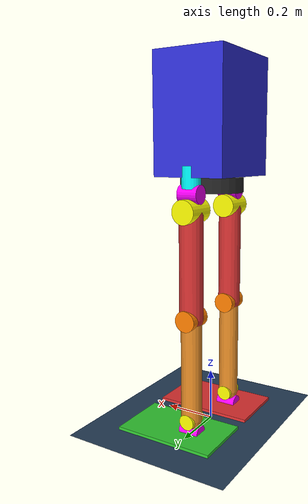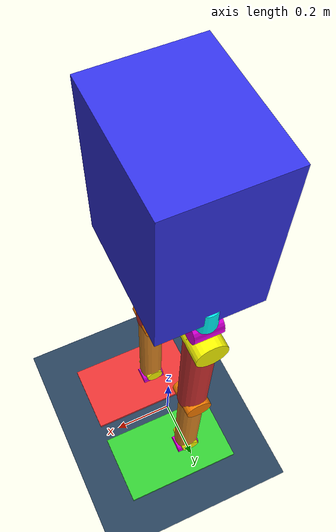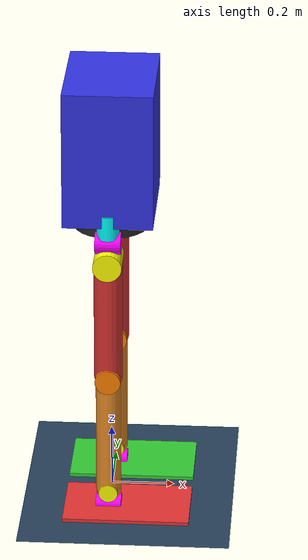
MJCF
<?xml version="1.0"?>
<mujoco model="colored_humanoid">

    <compiler angle="radian" inertiafromgeom="true"/>

    <option timestep="0.001"
            gravity="0 0 -9.81"
            solver="Newton"
            iterations="100"/>

    <default>
        <joint damping="20"
               armature="0.1"
               limited="true"/>

        <geom friction="2.0 0.1 0.1"/>

        <motor ctrllimited="true"
               ctrlrange="-1 1"/>
    </default>

    <asset>
        <texture name="grid" type="2d" builtin="checker" rgb1=".1 .2 .3" rgb2=".2 .3 .4" width="300" height="300"/>
        <material name="grid" texture="grid" texrepeat="8 8" reflectance="0.2"/>
    </asset>

    <worldbody>

        <geom name="ground"
              type="plane"
              pos="0 0 0"
              size="20 20 0.1"
              material="grid"/>

        <!-- TORSO -->

        <body name="torso" pos="0 0 1.20">

            <freejoint name="root"/>

            <site name="imu_site" pos="0 0 0" size="0.01" rgba="1 0 0 1"/>

            <geom name="torso_geom"
                  type="box"
                  size="0.14 0.18 0.22"
                  mass="8"
                  rgba="0.2 0.2 0.9 1"/>

            <geom name="pelvis"
                  type="cylinder"
                  size="0.12 0.06"
                  pos="0 0 -0.22"
                  mass="6"
                  rgba="0.15 0.15 0.15 1"/>

            <!-- LEFT LEG -->

            <body name="left_hip_yaw_link"
                  pos="0 0.15 -0.22">

                <joint name="left_hip_yaw"
                       type="hinge"
                       axis="0 0 1"
                       range="-0.6 0.6"/>

                <geom type="cylinder"
                      size="0.035 0.04"
                      mass="0.2"
                      rgba="0 1 1 1"/>

                <body name="left_hip_roll_link"
                      pos="0 0 -0.06">

                    <joint name="left_hip_roll"
                           type="hinge"
                           axis="1 0 0"
                           range="-0.5 0.5"/>

                    <geom type="cylinder"
                          size="0.035 0.04"
                          quat="0.7071 0 0.7071 0"
                          mass="0.2"
                          rgba="1 0 1 1"/>

                    <body name="left_thigh_link"
                          pos="0 0 -0.06">

                        <joint name="left_hip_pitch"
                               type="hinge"
                               axis="0 1 0"
                               range="-1.5 0.8"/>

                        <geom type="cylinder"
                              size="0.045 0.06"
                              quat="0.7071 0.7071 0 0"
                              mass="0.2"
                              rgba="1 1 0 1"/>

                        <geom name="left_thigh"
                              type="capsule"
                              fromto="0 0 0 0 0 -0.40"
                              size="0.045"
                              mass="4"
                              rgba="0.85 0.2 0.2 1"/>

                        <body name="left_shin_link"
                              pos="0 0 -0.40">

                            <joint name="left_knee_pitch"
                                   type="hinge"
                                   axis="0 1 0"
                                   range="0 2.0"/>

                            <geom type="cylinder"
                                  size="0.04 0.05"
                                  quat="0.7071 0.7071 0 0"
                                  mass="0.2"
                                  rgba="1 0.5 0 1"/>

                            <geom name="left_shin"
                                  type="capsule"
                                  fromto="0 0 0 0 0 -0.40"
                                  size="0.04"
                                  mass="3"
                                  rgba="0.9 0.55 0.15 1"/>

                            <body name="left_ankle_pitch_link"
                                  pos="0 0 -0.40">

                                <joint name="left_ankle_pitch"
                                       type="hinge"
                                       axis="0 1 0"
                                       range="-0.8 0.6"/>

                                <geom type="cylinder"
                                      size="0.03 0.04"
                                      quat="0.7071 0.7071 0 0"
                                      mass="0.2"
                                      rgba="1 1 0 1"/>

                                <body name="left_foot_link"
                                      pos="0 0 -0.05">

                                    <joint name="left_ankle_roll"
                                           type="hinge"
                                           axis="1 0 0"
                                           range="-0.45 0.45"/>

                                    <geom type="cylinder"
                                          size="0.03 0.04"
                                          quat="0.7071 0 0.7071 0"
                                          mass="0.2"
                                          rgba="1 0 1 1"/>

                                    <geom name="left_foot"
                                          type="box"
                                          size="0.20 0.12 0.025"
                                          pos="0.06 0 -0.025"
                                          mass="2.5"
                                          rgba="0.2 0.8 0.2 1"/>

                                </body>
                            </body>
                        </body>
                    </body>
                </body>
            </body>

            <!-- RIGHT LEG -->

            <body name="right_hip_yaw_link"
                  pos="0 -0.15 -0.22">

                <joint name="right_hip_yaw"
                       type="hinge"
                       axis="0 0 1"
                       range="-0.6 0.6"/>

                <geom type="cylinder"
                      size="0.035 0.04"
                      mass="0.2"
                      rgba="0 1 1 1"/>

                <body name="right_hip_roll_link"
                      pos="0 0 -0.06">

                    <joint name="right_hip_roll"
                           type="hinge"
                           axis="1 0 0"
                           range="-0.5 0.5"/>

                    <geom type="cylinder"
                          size="0.035 0.04"
                          quat="0.7071 0 0.7071 0"
                          mass="0.2"
                          rgba="1 0 1 1"/>

                    <body name="right_thigh_link"
                          pos="0 0 -0.06">

                        <joint name="right_hip_pitch"
                               type="hinge"
                               axis="0 1 0"
                               range="-1.5 0.8"/>

                        <geom type="cylinder"
                              size="0.045 0.06"
                              quat="0.7071 0.7071 0 0"
                              mass="0.2"
                              rgba="1 1 0 1"/>

                        <geom name="right_thigh"
                              type="capsule"
                              fromto="0 0 0 0 0 -0.40"
                              size="0.045"
                              mass="4"
                              rgba="0.85 0.2 0.2 1"/>

                        <body name="right_shin_link"
                              pos="0 0 -0.40">

                            <joint name="right_knee_pitch"
                                   type="hinge"
                                   axis="0 1 0"
                                   range="0 2.0"/>

                            <geom type="cylinder"
                                  size="0.04 0.05"
                                  quat="0.7071 0.7071 0 0"
                                  mass="0.2"
                                  rgba="1 0.5 0 1"/>

                            <geom name="right_shin"
                                  type="capsule"
                                  fromto="0 0 0 0 0 -0.40"
                                  size="0.04"
                                  mass="3"
                                  rgba="0.9 0.55 0.15 1"/>

                            <body name="right_ankle_pitch_link"
                                  pos="0 0 -0.40">

                                <joint name="right_ankle_pitch"
                                       type="hinge"
                                       axis="0 1 0"
                                       range="-0.8 0.6"/>

                                <geom type="cylinder"
                                      size="0.03 0.04"
                                      quat="0.7071 0.7071 0 0"
                                      mass="0.2"
                                      rgba="1 1 0 1"/>

                                <body name="right_foot_link"
                                      pos="0 0 -0.05">

                                    <joint name="right_ankle_roll"
                                           type="hinge"
                                           axis="1 0 0"
                                           range="-0.45 0.45"/>

                                    <geom type="cylinder"
                                          size="0.03 0.04"
                                          quat="0.7071 0 0.7071 0"
                                          mass="0.2"
                                          rgba="1 0 1 1"/>

                                    <geom name="right_foot"
                                          type="box"
                                          size="0.20 0.12 0.025"
                                          pos="0.06 0 -0.025"
                                          mass="2.5"
                                          rgba="0.9 0.2 0.2 1"/>

                                </body>
                            </body>
                        </body>
                    </body>
                </body>
            </body>

        </body>
    </worldbody>

    <actuator>
        <motor joint="left_hip_yaw" gear="100"/>
        <motor joint="left_hip_roll" gear="200"/>
        <motor joint="left_hip_pitch" gear="300"/>
        <motor joint="left_knee_pitch" gear="350"/>
        <motor joint="left_ankle_pitch" gear="200"/>
        <motor joint="left_ankle_roll" gear="200"/>

        <motor joint="right_hip_yaw" gear="100"/>
        <motor joint="right_hip_roll" gear="200"/>
        <motor joint="right_hip_pitch" gear="300"/>
        <motor joint="right_knee_pitch" gear="350"/>
        <motor joint="right_ankle_pitch" gear="200"/>
        <motor joint="right_ankle_roll" gear="200"/>
    </actuator>

    <sensor>
        <gyro name="imu_gyro" site="imu_site"/>
        <accelerometer name="imu_accel" site="imu_site"/>
        <framequat name="imu_quat" objtype="site" objname="imu_site"/>
    </sensor>

</mujoco>
